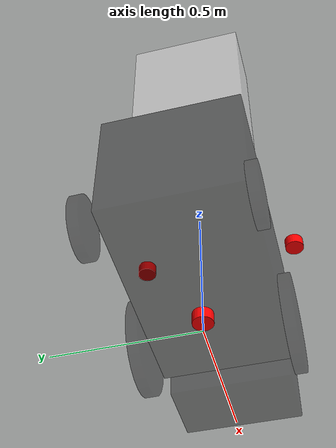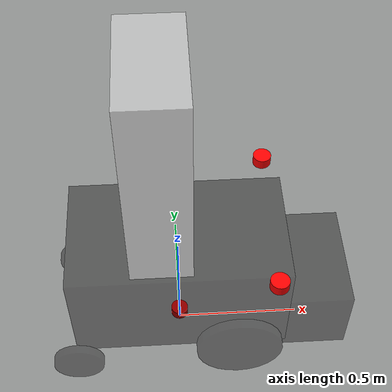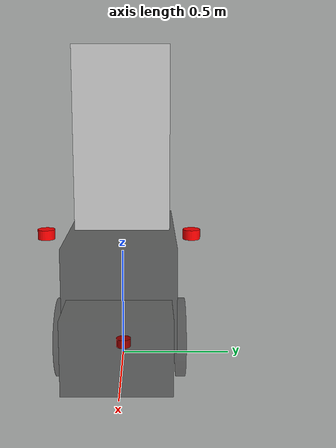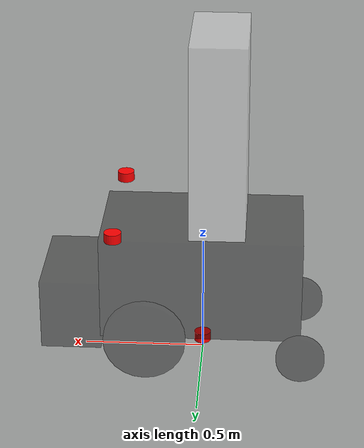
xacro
<?xml version="1.0"?>

<robot xmlns:xacro="http://www.ros.org/wiki/xacro"
    xmlns:sensor="http://playerstage.sourceforge.net/gazebo/xmlschema/#sensor"
    xmlns:controller="http://playerstage.sourceforge.net/gazebo/xmlschema/#controller"
    xmlns:interface="http://playerstage.sourceforge.net/gazebo/xmlschema/#interface"
    name="wheelchair_iaslab_sensors">

    <xacro:include filename="wheelchair_iaslab.xacro" />

    <xacro:property name="xpos"    value ="0.346609" />
    <xacro:property name="ypos"    value ="0.295568" />
    <xacro:property name="zcamera" value ="0.58" />
    <xacro:property name="zlaser"  value ="0.66" />

    <!-- Laser Hokuyo properties -->
    <xacro:property name="laser_length" value="0.04"  />
    <xacro:property name="laser_radius" value="0.035" />
    <xacro:property name="laser_mass"   value="0.160" />

    <!-- Laser Hokuyo-->
    <link name="$(arg prefix)hokuyo_laser_link_left" >
        <visual>
            <geometry>
                <cylinder length="${laser_length}" radius="${laser_radius}"/>
            </geometry>
            <material name="red">
                <color rgba="1 0 0 1"/>
            </material>
        </visual>

        <collision>
            <geometry>
                <cylinder length="${laser_length}" radius="${laser_radius}"/>
            </geometry>
        </collision>

        <inertial>
            <mass value="${laser_mass}" />
            <xacro:cylinder_inertia m="${laser_mass}" r="${laser_radius}" h="${laser_length}" />
        </inertial>
    </link>

    <joint name="$(arg prefix)base_laser_joint_left" type="fixed">
        <axis xyz="0 1 0"/>
        <parent link="$(arg prefix)base_footprint"/>
        <child link="$(arg prefix)hokuyo_laser_link_left"/>
        <origin xyz="${xpos}  ${ypos}  ${zlaser}" rpy="0 0 0" />
        <axis xyz="0 1 0"/>
    </joint>

    <link name="$(arg prefix)hokuyo_laser_link_right" >
        <visual>
            <geometry>
                <cylinder length="${laser_length}" radius="${laser_radius}"/>
            </geometry>
            <material name="red">
                <color rgba="1 0 0 1"/>
            </material>
        </visual>

        <collision>
            <geometry>
                <cylinder length="${laser_length}" radius="${laser_radius}"/>
            </geometry>
        </collision>

        <inertial>
            <mass value="${laser_mass}" />
            <xacro:cylinder_inertia m="${laser_mass}" r="${laser_radius}" h="${laser_length}" />
        </inertial>
    </link>

    <joint name="$(arg prefix)base_laser_joint_right" type="fixed">
        <parent link="$(arg prefix)base_footprint"/>
        <child link="$(arg prefix)hokuyo_laser_link_right"/>
        <origin xyz="${xpos} -${ypos} ${zlaser}" rpy="0 0 0" />
        <axis xyz="0 1 0"/>

    </joint>

    <link name="$(arg prefix)imu_link" >
        <visual>
            <geometry>
                <cylinder length="${laser_length}" radius="${laser_radius}"/>
            </geometry>
            <material name="red">
                <color rgba="1 0 0 1"/>
            </material>
        </visual>

        <collision>
            <geometry>
                <cylinder length="${laser_length}" radius="${laser_radius}"/>
            </geometry>
        </collision>

        <inertial>
            <mass value="${laser_mass}" />
            <xacro:cylinder_inertia m="${laser_mass}" r="${laser_radius}" h="${laser_length}" />
        </inertial>
    </link>

    <joint name="$(arg prefix)imu_link_j" type="fixed">
	<parent link="$(arg prefix)base_footprint"/>
        <child link="$(arg prefix)imu_link"/>
         <origin xyz="0.0  0.0  0.05" rpy="0 0 0" />
        <axis xyz="0 1 0"/>
    </joint>

</robot>

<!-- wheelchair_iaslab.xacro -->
<robot xmlns:xacro="http://www.ros.org/wiki/xacro"
    xmlns:sensor="http://playerstage.sourceforge.net/gazebo/xmlschema/#sensor"
    xmlns:controller="http://playerstage.sourceforge.net/gazebo/xmlschema/#controller"
    xmlns:interface="http://playerstage.sourceforge.net/gazebo/xmlschema/#interface"
    name="wheelchair_iaslab">

    <xacro:arg name="prefix" default="wcias_"/>

    <xacro:include filename="$(find robot_model_pkg)/urdf/wheelchair_iaslab.gazebo"/>

    <xacro:property name="M_PI" value="3.1415926535897931"/>

    <!-- Base Properties: width = y axis, length = x axis, z = height axis -->
   <!--From right wheel to left wheel-->
    <!--From front wheel to back wheel-->
  <!--From lower base to upper base of chair-->

     <xacro:property name="base_width" value="0.475" /> <!--From the centre of the right wheel to the centre of the left wheel-->
     <xacro:property name="base_length" value="0.8275"/> <!-- From the centre of small wheel to the main wheel (included the diameter)-->
     <xacro:property name="base_height" value="0.44" /> <!-- From the ground to before pillow-->
     <xacro:property name="base_mass" value="10.0" /> <!--in Kg-->

    <!-- Chair back properties -->
    <xacro:property name="chair_back_width" value="0.43" />
    <xacro:property name="chair_back_length" value="0.23" />
    <xacro:property name="chair_back_height" value="0.82" />
    <xacro:property name="chair_back_mass" value="1.0" />

    <!-- Pillow properties -->
    <xacro:property name="pillow_width" value="0.42" />
    <xacro:property name="pillow_length" value="0.485" />
    <xacro:property name="pillow_height" value="0.07" />

    <!-- Legs properties -->
    <xacro:property name="legs_width" value="0.43" />
    <xacro:property name="legs_length" value="0.25" />
    <xacro:property name="legs_height" value="0.30" /> <!--about, to be remeasured-->
    <xacro:property name="legs_mass" value="2.0" />

    <!-- Wheels Properties -->
    <!-- Front wheel properties-->
    <xacro:property name="main_wheel_length" value="0.04" />
    <xacro:property name="main_wheel_radius" value="0.17" />
    <xacro:property name="main_wheel_mass" value="2.0" />

    <!-- Rear wheel properties -->
    <xacro:property name="small_wheel_length" value="0.035" />
    <xacro:property name="small_wheel_radius" value="0.10" />
    <xacro:property name="small_wheel_mass" value="1.0" />

    <!-- Inertia matrices -->
    <!--Maybe swap w and l-->
    <xacro:macro name="box_inertia" params="w l h m" >
        <inertia ixx="${1/12*m*(l*l+h*h)}" ixy="0" ixz="0"
                 iyy="${1/12*m*(w*w+l*l)}" iyz="0"
                 izz="${1/12*m*(w*w+h*h)}" />
    </xacro:macro>

    <!--m = mass, r = radius, h = height -->
    <xacro:macro name="cylinder_inertia" params="m r h" >
        <inertia ixx="${1/12*m*(3*r*r + h*h)}" ixy="0" ixz="0"
                 iyy="${1/12*m*(3*r*r + h*h)}" iyz="0"
                 izz="${1/2*m*r*r}" />
    </xacro:macro>

    <!-- Links and joints definitions -->

    <!-- Footprint and base -->
    <link name="$(arg prefix)base_footprint" />

    <joint name="$(arg prefix)base_footprint_joint" type="fixed">
        <parent link="$(arg prefix)base_footprint" />
        <child link="$(arg prefix)base_link" />
        <origin xyz="0.0 0.0 ${base_height/2 + main_wheel_radius}" rpy="0 0 0" />
    </joint>

    <link name="$(arg prefix)base_link">
        <inertial>
            <!--origin?-->
            <mass value="${base_mass}" />
            <xacro:box_inertia w="${base_width}" l="${base_length}" h="${base_height}" m="${base_mass}" />
        </inertial>

        <visual>
            <geometry>
                <box size="${base_length} ${base_width} ${base_height}"/>
            </geometry>
            <!--origin?-->
            <material name="black">
                <color rgba="0 0 0 0.4"/>
            </material>
        </visual>

        <collision>
            <geometry>
                <box size="${base_length} ${base_width} ${base_height}"/>
            </geometry>
            <!--origin?-->
        </collision>
    </link>

    <!-- Chair back -->
    <link name="$(arg prefix)chair_back_link" >
        <!--inertial?-->
        <visual>
            <!--origin?-->
            <geometry>
                <box size="${chair_back_length} ${chair_back_width} ${chair_back_height}" />
            </geometry>
            <material name="black">
                <color rgba="1 1 1 0.4" />
            </material>
        </visual>

        <collision>
            <!--origin?-->
            <geometry>
                <box size="${chair_back_length} ${chair_back_width} ${chair_back_height}" />
            </geometry>
        </collision>
    </link>

    <joint name="$(arg prefix)chair_back_joint" type="fixed" >
        <parent link="$(arg prefix)base_link" />
        <child link="$(arg prefix)chair_back_link" />
        <origin xyz="-${base_length/2 - 0.35} 0 ${base_height/2 + chair_back_height/2}" rpy="0 0 0" />
    </joint>

    <!-- Legs -->
    <link name="$(arg prefix)legs_link">
        <inertial>
            <!--Origin?-->
            <mass value="${legs_mass}"/>
            <xacro:box_inertia w="${legs_width}" l="${legs_length}" h="${legs_height}" m="${legs_mass}" />
        </inertial>

        <visual>
            <geometry>
                <box size="${legs_length} ${legs_width} ${legs_height}" />
            </geometry>
            <!--origin?-->
            <material name="black">
                <color rgba="0 0 0 0.4" />
            </material>
        </visual>

        <collision>
            <!--origin?-->
            <geometry>
                <box size="${legs_length} ${legs_width} ${legs_height}" />
            </geometry>
        </collision>
    </link>

    <joint name="$(arg prefix)legs_joint" type="fixed">
        <parent link="$(arg prefix)base_link" />
        <child link="$(arg prefix)legs_link" />
        <origin xyz="${base_length/2 + legs_length/2} 0 -${base_height/2 - legs_height/2 + 0.07}" rpy="0 0 0" />
    </joint>

    <!-- Front wheels -->
    <link name="$(arg prefix)left_main_wheel_link">
        <inertial>
            <origin xyz="0 0 0" rpy="${M_PI/2} 0 0" />
            <mass value="${main_wheel_mass}" />
            <xacro:cylinder_inertia m="${main_wheel_mass}" r="${main_wheel_radius}" h="${main_wheel_length}" />
        </inertial>

        <visual>
            <geometry>
                <cylinder length="${main_wheel_length}" radius="${main_wheel_radius}" />
            </geometry>
            <origin xyz="0 0 0" rpy="${M_PI/2} 0 0" />
            <material name="black">
                <color rgba="0 0 0 0.4"/>
            </material>
        </visual>

        <collision>
            <geometry>
                <cylinder length="${main_wheel_length}" radius="${main_wheel_radius}" />
            </geometry>
            <origin xyz="0 0 0" rpy="${M_PI/2} 0 0" />
        </collision>
    </link>

    <joint name="$(arg prefix)left_main_wheel_joint" type="continuous" >
        <parent link="$(arg prefix)base_link" />
        <child link="$(arg prefix)left_main_wheel_link" />
        <origin xyz="0.23  ${base_width/2 + main_wheel_length/2} -${base_height/2}" rpy="0 0 0" />
        <axis xyz="0 1 0" />
        <joint_properties damping="0.0" friction="0.0" />
    </joint>

    <link name="$(arg prefix)right_main_wheel_link">
        <inertial>
            <origin xyz="0 0 0" rpy="${M_PI/2} 0 0" />
            <mass value="${main_wheel_mass}" />
            <xacro:cylinder_inertia m="${main_wheel_mass}" r="${main_wheel_radius}" h="${main_wheel_length}" />
        </inertial>

        <visual>
            <geometry>
                <cylinder length="${main_wheel_length}" radius="${main_wheel_radius}" />
            </geometry>
            <origin xyz="0 0 0" rpy="${M_PI/2} 0 0" />
            <material name="black">
                <color rgba="0 0 0 0.4"/>
            </material>
        </visual>

        <collision>
            <geometry>
                <cylinder length="${main_wheel_length}" radius="${main_wheel_radius}" />
            </geometry>
            <origin xyz="0 0 0" rpy="${M_PI/2} 0 0" />
        </collision>
    </link>

    <joint name="$(arg prefix)right_main_wheel_joint" type="continuous" >
        <parent link="$(arg prefix)base_link" />
        <child link="$(arg prefix)right_main_wheel_link" />
        <origin xyz="0.23  -${base_width/2 + main_wheel_length/2} -${base_height/2}" rpy="0 0 0" />
        <axis xyz="0 1 0" />
        <joint_properties damping="0.0" friction="0.0" />
    </joint>

    <!-- Rear wheels -->
    <link name="$(arg prefix)left_small_wheel_link">
        <inertial>
            <origin xyz="0 0 0" rpy="${M_PI/2} 0 0" />
            <mass value="${small_wheel_mass}" />
            <xacro:cylinder_inertia m="${small_wheel_mass}" r="${small_wheel_radius}" h="${small_wheel_length}" />
        </inertial>

        <visual>
            <geometry>
                <cylinder length="${small_wheel_length}" radius="${small_wheel_radius}" />
            </geometry>
            <origin xyz="0 0 0" rpy="${M_PI/2} 0 0" />
            <material name="black">
                <color rgba="0 0 0 0.4"/>
            </material>
        </visual>

        <collision>
            <geometry>
                <cylinder length="${small_wheel_length}" radius="${small_wheel_radius}" />
            </geometry>
            <origin xyz="0 0 0" rpy="${M_PI/2} 0 0" />
        </collision>
    </link>

    <joint name="$(arg prefix)left_small_wheel_joint" type="continuous" >
        <parent link="$(arg prefix)base_link" />
        <child link="$(arg prefix)left_small_wheel_link" />
        <origin xyz="-${base_length/2}  ${base_width/2 + small_wheel_length/2} -${base_height/2 + 0.07}" rpy="0 0 0" />
        <axis xyz="0 1 0" />
        <joint_properties damping="0.0" friction="0.0" />
    </joint>

    <link name="$(arg prefix)right_small_wheel_link">
        <inertial>
            <origin xyz="0 0 0" rpy="${M_PI/2} 0 0" />
            <mass value="${small_wheel_mass}" />
            <xacro:cylinder_inertia m="${small_wheel_mass}" r="${small_wheel_radius}" h="${small_wheel_length}" />
        </inertial>

        <visual>
            <geometry>
                <cylinder length="${small_wheel_length}" radius="${small_wheel_radius}" />
            </geometry>
            <origin xyz="0 0 0" rpy="${M_PI/2} 0 0" />
            <material name="black">
                <color rgba="0 0 0 0.4"/>
            </material>
        </visual>

        <collision>
            <geometry>
                <cylinder length="${small_wheel_length}" radius="${small_wheel_radius}" />
            </geometry>
            <origin xyz="0 0 0" rpy="${M_PI/2} 0 0" />
        </collision>
    </link>

    <joint name="$(arg prefix)right_small_wheel_joint" type="continuous" >
        <parent link="$(arg prefix)base_link" />
        <child link="$(arg prefix)right_small_wheel_link" />
        <origin xyz="-${base_length/2}  -${base_width/2 + small_wheel_length/2} -${base_height/2 + 0.07}" rpy="0 0 0" />
        <axis xyz="0 1 0" />
        <joint_properties damping="0.0" friction="0.0" />
    </joint>
    <!--The 0.07cm is the difference between the radius of the two wheels-->

</robot>
